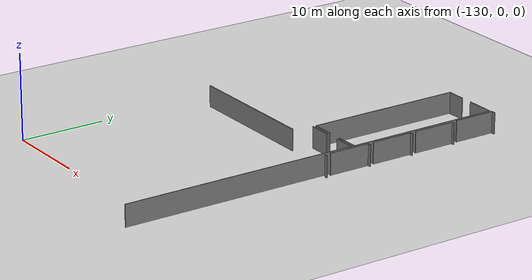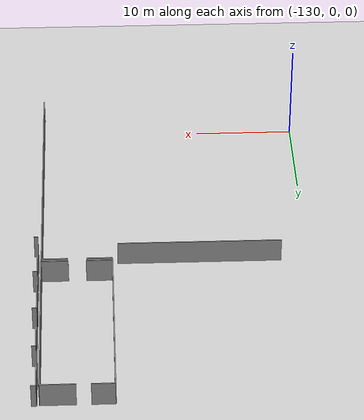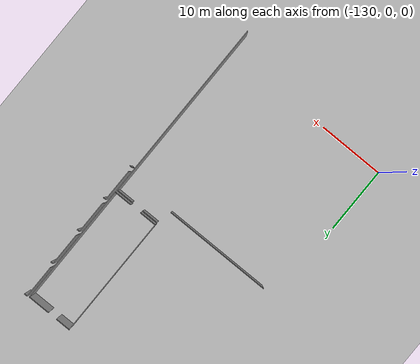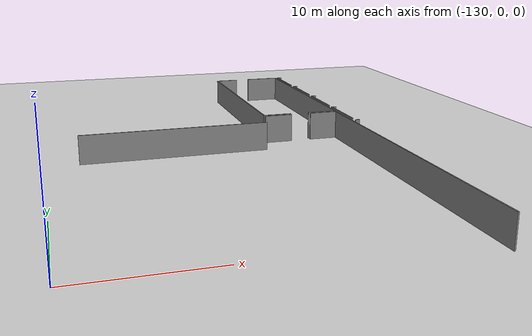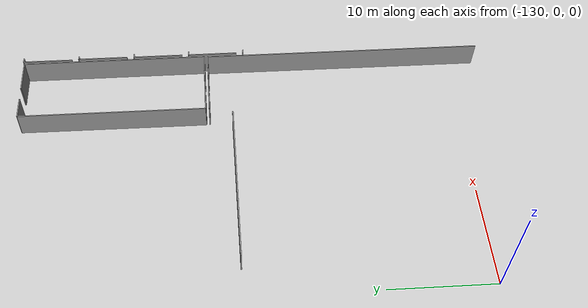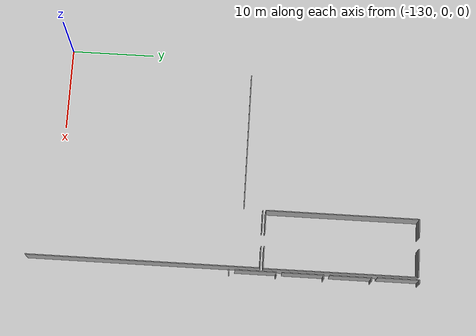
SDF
<sdf version="1.6">
 <world name="default">
  <model name="ground_plane">
   <static>1</static>
   <link name="link">
    <collision name="collision">
     <geometry><plane><normal>0 0 1</normal><size>100 100</size></plane></geometry>
     <surface><friction><ode><mu>100</mu><mu2>50</mu2></ode></friction></surface>
    </collision>
    <visual name="visual">
     <cast_shadows>0</cast_shadows>
     <geometry><plane><normal>0 0 1</normal><size>100 100</size></plane></geometry>
     <material>
      <script><uri>file://media/materials/scripts/gazebo.material</uri><name>Gazebo/Grey</name></script>
     </material>
    </visual>
   </link>
  </model>
  <model name="50015848">
   <static>1</static>
   <link name="Wall_0">
    <collision name="Wall_0_Collision">
     <geometry><box><size>16.2391134736 0.1 2.5</size></box></geometry>
     <pose>8.1195567368 0 1.25 0 0 0</pose>
    </collision>
    <visual name="Wall_0_Visual">
     <pose>8.1195567368 0 1.25 0 0 0</pose>
     <geometry><box><size>16.2391134736 0.1 2.5</size></box></geometry>
     <material>
      <script><uri>file://media/materials/scripts/gazebo.material</uri><name>Gazebo/Grey</name></script>
      <ambient>1 1 1 1</ambient>
     </material>
    </visual>
    <pose>20.7364461557 -21.3126629411 0 0 0 3.14159265359</pose>
   </link>
   <link name="Wall_25">
    <collision name="Wall_25_Collision">
     <geometry><box><size>2.53170016936 0.1 2.5</size></box></geometry>
     <pose>1.26585008468 0 1.25 0 0 0</pose>
    </collision>
    <visual name="Wall_25_Visual">
     <pose>1.26585008468 0 1.25 0 0 0</pose>
     <geometry><box><size>2.53170016936 0.1 2.5</size></box></geometry>
     <material>
      <script><uri>file://media/materials/scripts/gazebo.material</uri><name>Gazebo/Grey</name></script>
      <ambient>1 1 1 1</ambient>
     </material>
    </visual>
    <pose>21.268514231 -19.0420491091 0 0 0 0.0</pose>
   </link>
   <link name="Wall_26">
    <collision name="Wall_26_Collision">
     <geometry><box><size>2.57077431509 0.1 2.5</size></box></geometry>
     <pose>1.28538715755 0 1.25 0 0 0</pose>
    </collision>
    <visual name="Wall_26_Visual">
     <pose>1.28538715755 0 1.25 0 0 0</pose>
     <geometry><box><size>2.57077431509 0.1 2.5</size></box></geometry>
     <material>
      <script><uri>file://media/materials/scripts/gazebo.material</uri><name>Gazebo/Grey</name></script>
      <ambient>1 1 1 1</ambient>
     </material>
    </visual>
    <pose>25.6478632912 -19.0420491091 0 0 0 0.0</pose>
   </link>
   <link name="Wall_27">
    <collision name="Wall_27_Collision">
     <geometry><box><size>27.7489866729 0.1 2.5</size></box></geometry>
     <pose>13.8744933365 0 1.25 0 0 0</pose>
    </collision>
    <visual name="Wall_27_Visual">
     <pose>13.8744933365 0 1.25 0 0 0</pose>
     <geometry><box><size>27.7489866729 0.1 2.5</size></box></geometry>
     <material>
      <script><uri>file://media/materials/scripts/gazebo.material</uri><name>Gazebo/Grey</name></script>
      <ambient>1 1 1 1</ambient>
     </material>
    </visual>
    <pose>28.2186376063 -19.0420491091 0 0 0 -1.57079632679</pose>
   </link>
   <link name="Wall_31">
    <collision name="Wall_31_Collision">
     <geometry><box><size>2.692310132 0.1 2.5</size></box></geometry>
     <pose>1.346155066 0 1.25 0 0 0</pose>
    </collision>
    <visual name="Wall_31_Visual">
     <pose>1.346155066 0 1.25 0 0 0</pose>
     <geometry><box><size>2.692310132 0.1 2.5</size></box></geometry>
     <material>
      <script><uri>file://media/materials/scripts/gazebo.material</uri><name>Gazebo/Grey</name></script>
      <ambient>1 1 1 1</ambient>
     </material>
    </visual>
    <pose>28.272681717 -18.6787102995 0 0 0 3.14159265359</pose>
   </link>
   <link name="Wall_32">
    <collision name="Wall_32_Collision">
     <geometry><box><size>2.57990853098 0.1 2.5</size></box></geometry>
     <pose>1.28995426549 0 1.25 0 0 0</pose>
    </collision>
    <visual name="Wall_32_Visual">
     <pose>1.28995426549 0 1.25 0 0 0</pose>
     <geometry><box><size>2.57990853098 0.1 2.5</size></box></geometry>
     <material>
      <script><uri>file://media/materials/scripts/gazebo.material</uri><name>Gazebo/Grey</name></script>
      <ambient>1 1 1 1</ambient>
     </material>
    </visual>
    <pose>23.8443631105 -18.6787102995 0 0 0 3.14159265359</pose>
   </link>
   <link name="Wall_33">
    <collision name="Wall_33_Collision">
     <geometry><box><size>18.2788346263 0.1 2.5</size></box></geometry>
     <pose>9.13941731315 0 1.25 0 0 0</pose>
    </collision>
    <visual name="Wall_33_Visual">
     <pose>9.13941731315 0 1.25 0 0 0</pose>
     <geometry><box><size>18.2788346263 0.1 2.5</size></box></geometry>
     <material>
      <script><uri>file://media/materials/scripts/gazebo.material</uri><name>Gazebo/Grey</name></script>
      <ambient>1 1 1 1</ambient>
     </material>
    </visual>
    <pose>21.2644545795 -18.6787102995 0 0 0 1.57079632679</pose>
   </link>
   <link name="Wall_34">
    <collision name="Wall_34_Collision">
     <geometry><box><size>2.21656972134 0.1 2.5</size></box></geometry>
     <pose>1.10828486067 0 1.25 0 0 0</pose>
    </collision>
    <visual name="Wall_34_Visual">
     <pose>1.10828486067 0 1.25 0 0 0</pose>
     <geometry><box><size>2.21656972134 0.1 2.5</size></box></geometry>
     <material>
      <script><uri>file://media/materials/scripts/gazebo.material</uri><name>Gazebo/Grey</name></script>
      <ambient>1 1 1 1</ambient>
     </material>
    </visual>
    <pose>21.2644545795 -0.399875673173 0 0 0 0.0</pose>
   </link>
   <link name="Wall_35">
    <collision name="Wall_35_Collision">
     <geometry><box><size>3.35758552227 0.1 2.5</size></box></geometry>
     <pose>1.67879276113 0 1.25 0 0 0</pose>
    </collision>
    <visual name="Wall_35_Visual">
     <pose>1.67879276113 0 1.25 0 0 0</pose>
     <geometry><box><size>3.35758552227 0.1 2.5</size></box></geometry>
     <material>
      <script><uri>file://media/materials/scripts/gazebo.material</uri><name>Gazebo/Grey</name></script>
      <ambient>1 1 1 1</ambient>
     </material>
    </visual>
    <pose>24.8640968227 -0.399875673173 0 0 0 0.0</pose>
   </link>
   <link name="Wall_36">
    <collision name="Wall_36_Collision">
     <geometry><box><size>18.2789057723 0.1 2.5</size></box></geometry>
     <pose>9.13945288613 0 1.25 0 0 0</pose>
    </collision>
    <visual name="Wall_36_Visual">
     <pose>9.13945288613 0 1.25 0 0 0</pose>
     <geometry><box><size>18.2789057723 0.1 2.5</size></box></geometry>
     <material>
      <script><uri>file://media/materials/scripts/gazebo.material</uri><name>Gazebo/Grey</name></script>
      <ambient>1 1 1 1</ambient>
     </material>
    </visual>
    <pose>28.221682345 -0.399875673173 0 0 0 -1.56800625616</pose>
   </link>
   <link name="Wall_286">
    <collision name="Wall_286_Collision">
     <geometry><box><size>4.91979016676 0.1 2.5</size></box></geometry>
     <pose>2.45989508338 0 1.25 0 0 0</pose>
    </collision>
    <visual name="Wall_286_Visual">
     <pose>2.45989508338 0 1.25 0 0 0</pose>
     <geometry><box><size>4.91979016676 0.1 2.5</size></box></geometry>
     <material>
      <script><uri>file://media/materials/scripts/gazebo.material</uri><name>Gazebo/Grey</name></script>
      <ambient>1 1 1 1</ambient>
     </material>
    </visual>
    <pose>28.5218428281 -5.21817455233 0 0 0 1.57079632679</pose>
   </link>
   <link name="Wall_287">
    <collision name="Wall_287_Collision">
     <geometry><box><size>0.479292605725 0.1 2.5</size></box></geometry>
     <pose>0.239646302863 0 1.25 0 0 0</pose>
    </collision>
    <visual name="Wall_287_Visual">
     <pose>0.239646302863 0 1.25 0 0 0</pose>
     <geometry><box><size>0.479292605725 0.1 2.5</size></box></geometry>
     <material>
      <script><uri>file://media/materials/scripts/gazebo.material</uri><name>Gazebo/Grey</name></script>
      <ambient>1 1 1 1</ambient>
     </material>
    </visual>
    <pose>28.5218428281 -0.298384385565 0 0 0 0.0</pose>
   </link>
   <link name="Wall_294">
    <collision name="Wall_294_Collision">
     <geometry><box><size>4.92613337224 0.1 2.5</size></box></geometry>
     <pose>2.46306668612 0 1.25 0 0 0</pose>
    </collision>
    <visual name="Wall_294_Visual">
     <pose>2.46306668612 0 1.25 0 0 0</pose>
     <geometry><box><size>4.92613337224 0.1 2.5</size></box></geometry>
     <material>
      <script><uri>file://media/materials/scripts/gazebo.material</uri><name>Gazebo/Grey</name></script>
      <ambient>1 1 1 1</ambient>
     </material>
    </visual>
    <pose>28.5974538373 -10.8192249872 0 0 0 1.57079632679</pose>
   </link>
   <link name="Wall_295">
    <collision name="Wall_295_Collision">
     <geometry><box><size>0.387189262222 0.1 2.5</size></box></geometry>
     <pose>0.193594631111 0 1.25 0 0 0</pose>
    </collision>
    <visual name="Wall_295_Visual">
     <pose>0.193594631111 0 1.25 0 0 0</pose>
     <geometry><box><size>0.387189262222 0.1 2.5</size></box></geometry>
     <material>
      <script><uri>file://media/materials/scripts/gazebo.material</uri><name>Gazebo/Grey</name></script>
      <ambient>1 1 1 1</ambient>
     </material>
    </visual>
    <pose>28.5974538373 -5.89309161492 0 0 0 0.0</pose>
   </link>
   <link name="Wall_304">
    <collision name="Wall_304_Collision">
     <geometry><box><size>4.91776034101 0.1 2.5</size></box></geometry>
     <pose>2.45888017051 0 1.25 0 0 0</pose>
    </collision>
    <visual name="Wall_304_Visual">
     <pose>2.45888017051 0 1.25 0 0 0</pose>
     <geometry><box><size>4.91776034101 0.1 2.5</size></box></geometry>
     <material>
      <script><uri>file://media/materials/scripts/gazebo.material</uri><name>Gazebo/Grey</name></script>
      <ambient>1 1 1 1</ambient>
     </material>
    </visual>
    <pose>28.5918718165 -16.4301708225 0 0 0 1.57079632679</pose>
   </link>
   <link name="Wall_305">
    <collision name="Wall_305_Collision">
     <geometry><box><size>0.435143895616 0.1 2.5</size></box></geometry>
     <pose>0.217571947808 0 1.25 0 0 0</pose>
    </collision>
    <visual name="Wall_305_Visual">
     <pose>0.217571947808 0 1.25 0 0 0</pose>
     <geometry><box><size>0.435143895616 0.1 2.5</size></box></geometry>
     <material>
      <script><uri>file://media/materials/scripts/gazebo.material</uri><name>Gazebo/Grey</name></script>
      <ambient>1 1 1 1</ambient>
     </material>
    </visual>
    <pose>28.5918718165 -11.5124104815 0 0 0 0.0</pose>
   </link>
   <link name="Wall_312">
    <collision name="Wall_312_Collision">
     <geometry><box><size>4.90329783253 0.1 2.5</size></box></geometry>
     <pose>2.45164891626 0 1.25 0 0 0</pose>
    </collision>
    <visual name="Wall_312_Visual">
     <pose>2.45164891626 0 1.25 0 0 0</pose>
     <geometry><box><size>4.90329783253 0.1 2.5</size></box></geometry>
     <material>
      <script><uri>file://media/materials/scripts/gazebo.material</uri><name>Gazebo/Grey</name></script>
      <ambient>1 1 1 1</ambient>
     </material>
    </visual>
    <pose>28.5969463809 -22.0022962404 0 0 0 1.57079632679</pose>
   </link>
   <link name="Wall_313">
    <collision name="Wall_313_Collision">
     <geometry><box><size>0.427785777265 0.1 2.5</size></box></geometry>
     <pose>0.213892888632 0 1.25 0 0 0</pose>
    </collision>
    <visual name="Wall_313_Visual">
     <pose>0.213892888632 0 1.25 0 0 0</pose>
     <geometry><box><size>0.427785777265 0.1 2.5</size></box></geometry>
     <material>
      <script><uri>file://media/materials/scripts/gazebo.material</uri><name>Gazebo/Grey</name></script>
      <ambient>1 1 1 1</ambient>
     </material>
    </visual>
    <pose>28.5969463809 -17.0989984079 0 0 0 0.0</pose>
   </link>
   <link name="Wall_322">
    <collision name="Wall_322_Collision">
     <geometry><box><size>0.395054837011 0.1 2.5</size></box></geometry>
     <pose>0.197527418506 0 1.25 0 0 0</pose>
    </collision>
    <visual name="Wall_322_Visual">
     <pose>0.197527418506 0 1.25 0 0 0</pose>
     <geometry><box><size>0.395054837011 0.1 2.5</size></box></geometry>
     <material>
      <script><uri>file://media/materials/scripts/gazebo.material</uri><name>Gazebo/Grey</name></script>
      <ambient>1 1 1 1</ambient>
     </material>
    </visual>
    <pose>28.593647914 -22.6769595748 0 0 0 0.0</pose>
   </link>
   <pose>-131.8 43.7717730528 0 0 0 0</pose>
  </model>
 </world>
</sdf>
